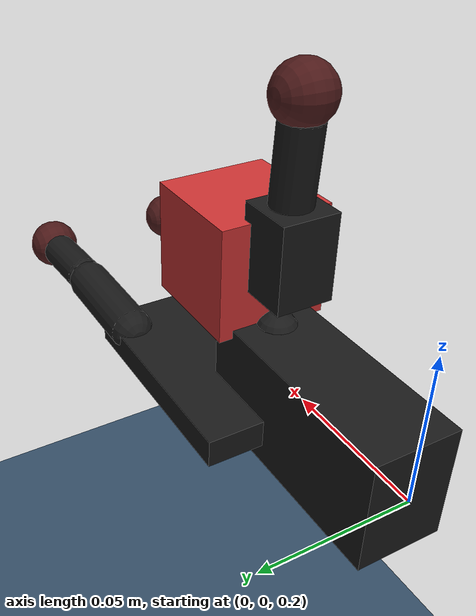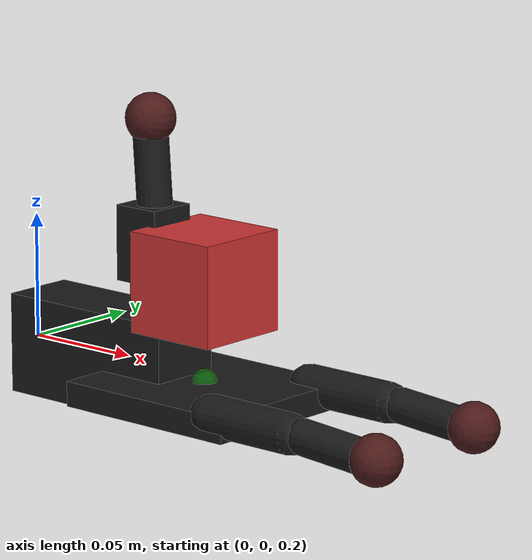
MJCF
<mujoco model="dex3_dice_mjx">
  <!-- MJX-optimized: primitive collisions only (no mesh) for GPU compatibility -->
  <compiler angle="radian"/>
  <option timestep="0.002" integrator="implicitfast"/>

  <statistic center="0 0 0.15" extent="0.3"/>

  <default>
    <default class="dex3">
      <joint armature="0.01" frictionloss="0.1" damping="0.3"/>
    </default>
  </default>

  <worldbody>
    <!-- Ground plane -->
    <geom name="floor" size="0 0 0.05" type="plane" contype="1" conaffinity="1"
          friction="0.8 0.005 0.0001" rgba="0.2 0.3 0.4 1"/>

    <!-- Dex3-1 hand on fixed base, palm facing up -->
    <body name="hand_mount" pos="0 0 0.2" childclass="dex3">
      <body name="right_wrist_yaw_link" pos="0 0 0" euler="1.5708 0 0">
        <inertial pos="0.0885506 -0.00212216 -0.000374562" quat="0.505358 0.513241 0.493844 0.487149"
          mass="0.457415" diaginertia="0.00105989 0.000895419 0.000323842"/>
        <!-- Wrist: box approximation -->
        <geom type="box" size="0.04 0.02 0.015" pos="0.04 0 0" rgba="0.1 0.1 0.1 1"
              contype="1" conaffinity="1" friction="0.8 0.005 0.0001"/>
        <!-- Palm: box approximation -->
        <geom type="box" size="0.04 0.005 0.035" pos="0.09 -0.008 0" rgba="0.1 0.1 0.1 1"
              contype="1" conaffinity="1" friction="0.8 0.005 0.0001"/>

        <site name="palm_site" pos="0.09 -0.003 0" size="0.005" rgba="0 1 0 0.3"/>

        <!-- Thumb: 3 joints -->
        <body name="right_hand_thumb_0_link" pos="0.067 -0.003 0">
          <inertial pos="-0.000884246 0.00863407 0.000944293"
            quat="0.643965 0.462991 -0.398986 0.460173" mass="0.0862366"
            diaginertia="1.6546e-05 1.60058e-05 1.43741e-05"/>
          <joint name="thumb_0" axis="0 1 0" range="-1.0472 1.0472"/>
          <geom type="capsule" size="0.008" fromto="0 0 0 0 0.019 0" rgba="0.1 0.1 0.1 1"
                contype="1" conaffinity="1" friction="0.8 0.005 0.0001"/>
          <body name="right_hand_thumb_1_link" pos="-0.0025 0.0193 0">
            <inertial pos="-0.000827888 0.0354744 -0.0003809"
              quat="0.705471 0.685598 -0.0956069 0.15207" mass="0.0588507"
              diaginertia="1.28514e-05 1.22902e-05 5.9666e-06"/>
            <joint name="thumb_1" axis="0 0 1" range="-1.0472 0.724312"/>
            <geom type="box" size="0.01 0.015 0.01" pos="-0.001 0.032 0" rgba="0.1 0.1 0.1 1"
                  contype="1" conaffinity="1" friction="0.8 0.005 0.0001" condim="4"/>
            <body name="right_hand_thumb_2_link" pos="0 0.0458 0">
              <inertial pos="-0.00171735 0.0262819 0.000107789"
                quat="0.710977 0.703174 0.00766553 0.00017564" mass="0.0203063"
                diaginertia="4.61314e-06 3.86645e-06 1.53495e-06"/>
              <joint name="thumb_2" axis="0 0 1" range="-1.74533 0"/>
              <geom type="capsule" size="0.007" fromto="0 0 0 -0.002 0.028 0" rgba="0.1 0.1 0.1 1"
                    contype="1" conaffinity="1" friction="0.8 0.005 0.0001"/>
              <geom name="thumb_tip_col" type="sphere" size="0.010" pos="-0.002 0.035 0"
                    rgba="0.3 0.1 0.1 1" friction="0.8 0.005 0.0001" condim="4"
                    contype="1" conaffinity="1"/>
              <site name="thumb_tip_site" pos="-0.002 0.035 0" size="0.005" rgba="1 0 0 0.5"/>
            </body>
          </body>
        </body>

        <!-- Middle finger: 2 joints -->
        <body name="right_hand_middle_0_link" pos="0.1192 -0.0046 -0.0285">
          <inertial pos="0.0354744 -0.000827888 0.0003809" quat="0.606373 0.417187 0.552395 0.391313"
            mass="0.0588507" diaginertia="1.28514e-05 1.22902e-05 5.9666e-06"/>
          <joint name="middle_0" axis="0 0 1" range="0 1.5708"/>
          <geom type="capsule" size="0.008" fromto="0 0 0 0.04 0 0" rgba="0.1 0.1 0.1 1"
                contype="1" conaffinity="1" friction="0.8 0.005 0.0001"/>
          <body name="right_hand_middle_1_link" pos="0.0458 0 0">
            <inertial pos="0.0262819 -0.00171735 -0.000107789"
              quat="0.502861 0.502639 0.491799 0.502612" mass="0.0203063"
              diaginertia="4.61314e-06 3.86645e-06 1.53495e-06"/>
            <joint name="middle_1" axis="0 0 1" range="0 1.74533"/>
            <geom type="capsule" size="0.007" fromto="0 0 0 0.028 -0.002 0" rgba="0.1 0.1 0.1 1"
                  contype="1" conaffinity="1" friction="0.8 0.005 0.0001"/>
            <geom name="middle_tip_col" type="sphere" size="0.010" pos="0.035 -0.002 0"
                  rgba="0.3 0.1 0.1 1" friction="0.8 0.005 0.0001" condim="4"
                  contype="1" conaffinity="1"/>
            <site name="middle_tip_site" pos="0.035 -0.002 0" size="0.005" rgba="1 0 0 0.5"/>
          </body>
        </body>

        <!-- Index finger: 2 joints -->
        <body name="right_hand_index_0_link" pos="0.1192 -0.0046 0.0285">
          <inertial pos="0.0354744 -0.000827888 0.0003809" quat="0.606373 0.417187 0.552395 0.391313"
            mass="0.0588507" diaginertia="1.28514e-05 1.22902e-05 5.9666e-06"/>
          <joint name="index_0" axis="0 0 1" range="0 1.5708"/>
          <geom type="capsule" size="0.008" fromto="0 0 0 0.04 0 0" rgba="0.1 0.1 0.1 1"
                contype="1" conaffinity="1" friction="0.8 0.005 0.0001"/>
          <body name="right_hand_index_1_link" pos="0.0458 0 0">
            <inertial pos="0.0262819 -0.00171735 -0.000107789"
              quat="0.502861 0.502639 0.491799 0.502612" mass="0.0203063"
              diaginertia="4.61314e-06 3.86645e-06 1.53495e-06"/>
            <joint name="index_1" axis="0 0 1" range="0 1.74533"/>
            <geom type="capsule" size="0.007" fromto="0 0 0 0.028 -0.002 0" rgba="0.1 0.1 0.1 1"
                  contype="1" conaffinity="1" friction="0.8 0.005 0.0001"/>
            <geom name="index_tip_col" type="sphere" size="0.010" pos="0.035 -0.002 0"
                  rgba="0.3 0.1 0.1 1" friction="0.8 0.005 0.0001" condim="4"
                  contype="1" conaffinity="1"/>
            <site name="index_tip_site" pos="0.035 -0.002 0" size="0.005" rgba="1 0 0 0.5"/>
          </body>
        </body>
      </body>
    </body>

    <!-- Dice (box only, no mesh for MJX) -->
    <body name="cube" pos="0.09 0.0 0.237">
      <freejoint name="cube_joint"/>
      <inertial pos="0 0 0" mass="0.05" diaginertia="0.0000033 0.0000033 0.0000033"/>
      <geom name="cube_core" type="box" size="0.02 0.02 0.02"
            mass="0.05" friction="0.8 0.005 0.0001" condim="4"
            contype="1" conaffinity="1" rgba="0.8 0.2 0.2 1"/>
      <site name="cube_center" pos="0 0 0" size="0.003" rgba="0 0 1 0.5"/>
    </body>

    <!-- Cameras -->
    <camera name="top_cam" pos="0.09 0.0 0.5" euler="0 0 0" fovy="45"/>
    <camera name="side_cam" pos="0.35 -0.2 0.35" xyaxes="-0.5 1 0 -0.3 -0.15 1"/>
  </worldbody>

  <!-- v3 position actuators: kp=5, dampratio=1, forcelimited -->
  <actuator>
    <position name="thumb_0_act" joint="thumb_0" kp="5" dampratio="1" inheritrange="1" forcelimited="true" forcerange="-1.5 1.5"/>
    <position name="thumb_1_act" joint="thumb_1" kp="5" dampratio="1" inheritrange="1" forcelimited="true" forcerange="-1.5 1.5"/>
    <position name="thumb_2_act" joint="thumb_2" kp="5" dampratio="1" inheritrange="1" forcelimited="true" forcerange="-1.5 1.5"/>
    <position name="middle_0_act" joint="middle_0" kp="5" dampratio="1" inheritrange="1" forcelimited="true" forcerange="-1.5 1.5"/>
    <position name="middle_1_act" joint="middle_1" kp="5" dampratio="1" inheritrange="1" forcelimited="true" forcerange="-1.5 1.5"/>
    <position name="index_0_act" joint="index_0" kp="5" dampratio="1" inheritrange="1" forcelimited="true" forcerange="-1.5 1.5"/>
    <position name="index_1_act" joint="index_1" kp="5" dampratio="1" inheritrange="1" forcelimited="true" forcerange="-1.5 1.5"/>
  </actuator>

  <!-- Sensors -->
  <sensor>
    <jointpos name="thumb_0_sensor" joint="thumb_0"/>
    <jointpos name="thumb_1_sensor" joint="thumb_1"/>
    <jointpos name="thumb_2_sensor" joint="thumb_2"/>
    <jointpos name="middle_0_sensor" joint="middle_0"/>
    <jointpos name="middle_1_sensor" joint="middle_1"/>
    <jointpos name="index_0_sensor" joint="index_0"/>
    <jointpos name="index_1_sensor" joint="index_1"/>
  </sensor>
</mujoco>
